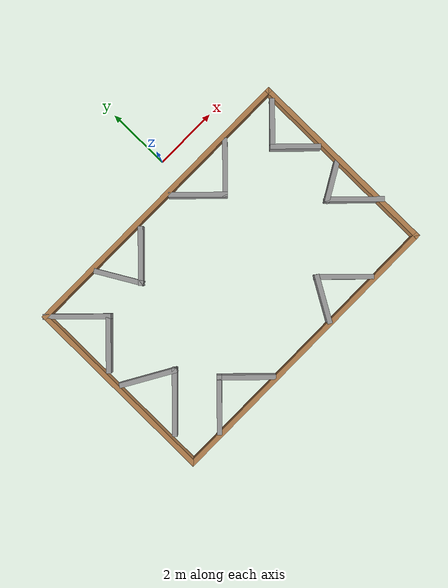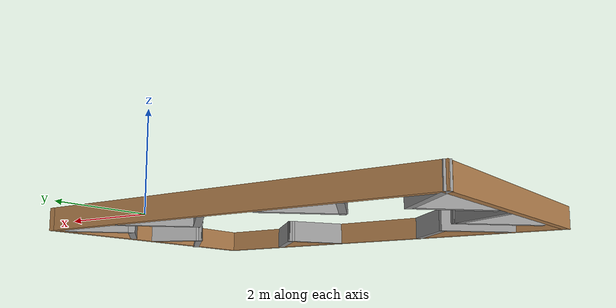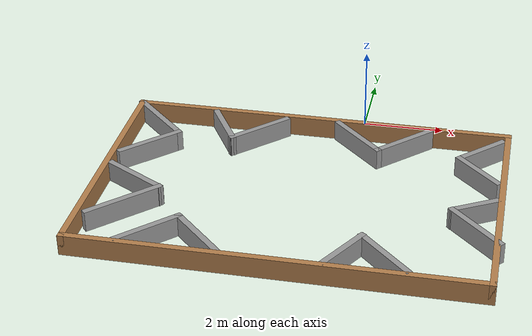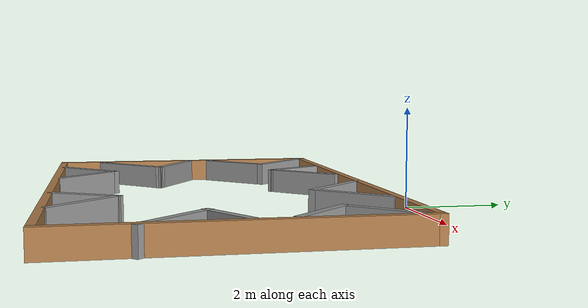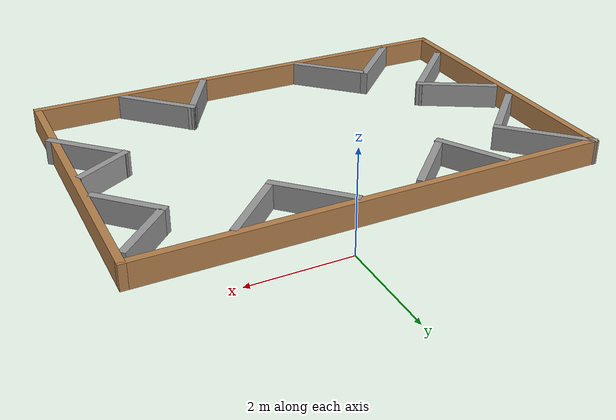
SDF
<?xml version='1.0'?>
<sdf version='1.7'>
  <model name='Maze_5'>
    <pose>-0.965569 -3.4925 0 0 -0 0</pose>
    <link name='Wall_0'>
      <collision name='Wall_0_Collision'>
        <geometry>
          <box>
            <size>6.25 0.15 0.5</size>
          </box>
        </geometry>
        <pose>0 0 0.25 0 -0 0</pose>
      </collision>
      <visual name='Wall_0_Visual'>
        <pose>0 0 0.25 0 -0 0</pose>
        <geometry>
          <box>
            <size>6.25 0.15 0.5</size>
          </box>
        </geometry>
        <material>
          <script>
            <uri>file://media/materials/scripts/gazebo.material</uri>
            <name>Gazebo/Wood</name>
          </script>
          <ambient>1 1 1 1</ambient>
        </material>
        <meta>
          <layer>0</layer>
        </meta>
      </visual>
      <pose>-4.70443 -0.3675 0 0 -0 -1.5708</pose>
    </link>
    <link name='Wall_1'>
      <collision name='Wall_1_Collision'>
        <geometry>
          <box>
            <size>9.5 0.15 0.5</size>
          </box>
        </geometry>
        <pose>0 0 0.25 0 -0 0</pose>
      </collision>
      <visual name='Wall_1_Visual'>
        <pose>0 0 0.25 0 -0 0</pose>
        <geometry>
          <box>
            <size>9.5 0.15 0.5</size>
          </box>
        </geometry>
        <material>
          <script>
            <uri>file://media/materials/scripts/gazebo.material</uri>
            <name>Gazebo/Wood</name>
          </script>
          <ambient>1 1 1 1</ambient>
        </material>
        <meta>
          <layer>0</layer>
        </meta>
      </visual>
      <pose>-0.029431 -3.4175 0 0 -0 0</pose>
    </link>
    <link name='Wall_11'>
      <collision name='Wall_11_Collision'>
        <geometry>
          <box>
            <size>1.75 0.15 0.5</size>
          </box>
        </geometry>
        <pose>0 0 0.25 0 -0 0</pose>
      </collision>
      <visual name='Wall_11_Visual'>
        <pose>0 0 0.25 0 -0 0</pose>
        <geometry>
          <box>
            <size>1.75 0.15 0.5</size>
          </box>
        </geometry>
        <material>
          <script>
            <uri>file://media/materials/scripts/gazebo.material</uri>
            <name>Gazebo/Grey</name>
          </script>
          <ambient>1 1 1 1</ambient>
        </material>
        <meta>
          <layer>0</layer>
        </meta>
      </visual>
      <pose>-2.95893 -2.772 0 0 -0 0.785398</pose>
    </link>
    <link name='Wall_14'>
      <collision name='Wall_14_Collision'>
        <geometry>
          <box>
            <size>1.75 0.15 0.5</size>
          </box>
        </geometry>
        <pose>0 0 0.25 0 -0 0</pose>
      </collision>
      <visual name='Wall_14_Visual'>
        <pose>0 0 0.25 0 -0 0</pose>
        <geometry>
          <box>
            <size>1.75 0.15 0.5</size>
          </box>
        </geometry>
        <material>
          <script>
            <uri>file://media/materials/scripts/gazebo.material</uri>
            <name>Gazebo/Grey</name>
          </script>
          <ambient>1 1 1 1</ambient>
        </material>
        <meta>
          <layer>0</layer>
        </meta>
      </visual>
      <pose>-1.82743 -2.772 0 0 -0 -0.784956</pose>
    </link>
    <link name='Wall_16'>
      <collision name='Wall_16_Collision'>
        <geometry>
          <box>
            <size>1.5 0.15 0.5</size>
          </box>
        </geometry>
        <pose>0 0 0.25 0 -0 0</pose>
      </collision>
      <visual name='Wall_16_Visual'>
        <pose>0 0 0.25 0 -0 0</pose>
        <geometry>
          <box>
            <size>1.5 0.15 0.5</size>
          </box>
        </geometry>
        <material>
          <script>
            <uri>file://media/materials/scripts/gazebo.material</uri>
            <name>Gazebo/Grey</name>
          </script>
          <ambient>1 1 1 1</ambient>
        </material>
        <meta>
          <layer>0</layer>
        </meta>
      </visual>
      <pose>1.39307 -2.773 0 0 -0 1.04715</pose>
    </link>
    <link name='Wall_17'>
      <collision name='Wall_17_Collision'>
        <geometry>
          <box>
            <size>1.75 0.15 0.5</size>
          </box>
        </geometry>
        <pose>0 0 0.25 0 -0 0</pose>
      </collision>
      <visual name='Wall_17_Visual'>
        <pose>0 0 0.25 0 -0 0</pose>
        <geometry>
          <box>
            <size>1.75 0.15 0.5</size>
          </box>
        </geometry>
        <material>
          <script>
            <uri>file://media/materials/scripts/gazebo.material</uri>
            <name>Gazebo/Grey</name>
          </script>
          <ambient>1 1 1 1</ambient>
        </material>
        <meta>
          <layer>0</layer>
        </meta>
      </visual>
      <pose>2.29607 -2.754 0 0 -0 -0.785398</pose>
    </link>
    <link name='Wall_2'>
      <collision name='Wall_2_Collision'>
        <geometry>
          <box>
            <size>6.25 0.15 0.5</size>
          </box>
        </geometry>
        <pose>0 0 0.25 0 -0 0</pose>
      </collision>
      <visual name='Wall_2_Visual'>
        <pose>0 0 0.25 0 -0 0</pose>
        <geometry>
          <box>
            <size>6.25 0.15 0.5</size>
          </box>
        </geometry>
        <material>
          <script>
            <uri>file://media/materials/scripts/gazebo.material</uri>
            <name>Gazebo/Wood</name>
          </script>
          <ambient>1 1 1 1</ambient>
        </material>
        <meta>
          <layer>0</layer>
        </meta>
      </visual>
      <pose>4.64557 -0.3675 0 0 -0 1.5708</pose>
    </link>
    <link name='Wall_20'>
      <collision name='Wall_20_Collision'>
        <geometry>
          <box>
            <size>1.5 0.15 0.5</size>
          </box>
        </geometry>
        <pose>0 0 0.25 0 -0 0</pose>
      </collision>
      <visual name='Wall_20_Visual'>
        <pose>0 0 0.25 0 -0 0</pose>
        <geometry>
          <box>
            <size>1.5 0.15 0.5</size>
          </box>
        </geometry>
        <material>
          <script>
            <uri>file://media/materials/scripts/gazebo.material</uri>
            <name>Gazebo/Grey</name>
          </script>
          <ambient>1 1 1 1</ambient>
        </material>
        <meta>
          <layer>0</layer>
        </meta>
      </visual>
      <pose>4.02807 1.915 0 0 -0 -2.35619</pose>
    </link>
    <link name='Wall_22'>
      <collision name='Wall_22_Collision'>
        <geometry>
          <box>
            <size>1.5 0.15 0.5</size>
          </box>
        </geometry>
        <pose>0 0 0.25 0 -0 0</pose>
      </collision>
      <visual name='Wall_22_Visual'>
        <pose>0 0 0.25 0 -0 0</pose>
        <geometry>
          <box>
            <size>1.5 0.15 0.5</size>
          </box>
        </geometry>
        <material>
          <script>
            <uri>file://media/materials/scripts/gazebo.material</uri>
            <name>Gazebo/Grey</name>
          </script>
          <ambient>1 1 1 1</ambient>
        </material>
        <meta>
          <layer>0</layer>
        </meta>
      </visual>
      <pose>4.02807 0.9605 0 0 -0 -0.784874</pose>
    </link>
    <link name='Wall_24'>
      <collision name='Wall_24_Collision'>
        <geometry>
          <box>
            <size>1.25 0.15 0.5</size>
          </box>
        </geometry>
        <pose>0 0 0.25 0 -0 0</pose>
      </collision>
      <visual name='Wall_24_Visual'>
        <pose>0 0 0.25 0 -0 0</pose>
        <geometry>
          <box>
            <size>1.25 0.15 0.5</size>
          </box>
        </geometry>
        <material>
          <script>
            <uri>file://media/materials/scripts/gazebo.material</uri>
            <name>Gazebo/Grey</name>
          </script>
          <ambient>1 1 1 1</ambient>
        </material>
        <meta>
          <layer>0</layer>
        </meta>
      </visual>
      <pose>4.04907 -0.5325 0 0 -0 -2.61816</pose>
    </link>
    <link name='Wall_25'>
      <collision name='Wall_25_Collision'>
        <geometry>
          <box>
            <size>1.75 0.15 0.5</size>
          </box>
        </geometry>
        <pose>0 0 0.25 0 -0 0</pose>
      </collision>
      <visual name='Wall_25_Visual'>
        <pose>0 0 0.25 0 -0 0</pose>
        <geometry>
          <box>
            <size>1.75 0.15 0.5</size>
          </box>
        </geometry>
        <material>
          <script>
            <uri>file://media/materials/scripts/gazebo.material</uri>
            <name>Gazebo/Grey</name>
          </script>
          <ambient>1 1 1 1</ambient>
        </material>
        <meta>
          <layer>0</layer>
        </meta>
      </visual>
      <pose>4.13857 -1.373 0 0 -0 -0.784956</pose>
    </link>
    <link name='Wall_27'>
      <collision name='Wall_27_Collision'>
        <geometry>
          <box>
            <size>1.5 0.15 0.5</size>
          </box>
        </geometry>
        <pose>0 0 0.25 0 -0 0</pose>
      </collision>
      <visual name='Wall_27_Visual'>
        <pose>0 0 0.25 0 -0 0</pose>
        <geometry>
          <box>
            <size>1.5 0.15 0.5</size>
          </box>
        </geometry>
        <material>
          <script>
            <uri>file://media/materials/scripts/gazebo.material</uri>
            <name>Gazebo/Grey</name>
          </script>
          <ambient>1 1 1 1</ambient>
        </material>
        <meta>
          <layer>0</layer>
        </meta>
      </visual>
      <pose>-2.36693 1.968 0 0 -0 -1.04715</pose>
    </link>
    <link name='Wall_28'>
      <collision name='Wall_28_Collision'>
        <geometry>
          <box>
            <size>1.75 0.15 0.5</size>
          </box>
        </geometry>
        <pose>0 0 0.25 0 -0 0</pose>
      </collision>
      <visual name='Wall_28_Visual'>
        <pose>0 0 0.25 0 -0 0</pose>
        <geometry>
          <box>
            <size>1.75 0.15 0.5</size>
          </box>
        </geometry>
        <material>
          <script>
            <uri>file://media/materials/scripts/gazebo.material</uri>
            <name>Gazebo/Grey</name>
          </script>
          <ambient>1 1 1 1</ambient>
        </material>
        <meta>
          <layer>0</layer>
        </meta>
      </visual>
      <pose>-1.46393 1.949 0 0 -0 0.785398</pose>
    </link>
    <link name='Wall_3'>
      <collision name='Wall_3_Collision'>
        <geometry>
          <box>
            <size>9.5 0.15 0.5</size>
          </box>
        </geometry>
        <pose>0 0 0.25 0 -0 0</pose>
      </collision>
      <visual name='Wall_3_Visual'>
        <pose>0 0 0.25 0 -0 0</pose>
        <geometry>
          <box>
            <size>9.5 0.15 0.5</size>
          </box>
        </geometry>
        <material>
          <script>
            <uri>file://media/materials/scripts/gazebo.material</uri>
            <name>Gazebo/Wood</name>
          </script>
          <ambient>1 1 1 1</ambient>
        </material>
        <meta>
          <layer>0</layer>
        </meta>
      </visual>
      <pose>-0.029431 2.6825 0 0 -0 3.14159</pose>
    </link>
    <link name='Wall_30'>
      <collision name='Wall_30_Collision'>
        <geometry>
          <box>
            <size>1.75 0.15 0.5</size>
          </box>
        </geometry>
        <pose>0 0 0.25 0 -0 0</pose>
      </collision>
      <visual name='Wall_30_Visual'>
        <pose>0 0 0.25 0 -0 0</pose>
        <geometry>
          <box>
            <size>1.75 0.15 0.5</size>
          </box>
        </geometry>
        <material>
          <script>
            <uri>file://media/materials/scripts/gazebo.material</uri>
            <name>Gazebo/Grey</name>
          </script>
          <ambient>1 1 1 1</ambient>
        </material>
        <meta>
          <layer>0</layer>
        </meta>
      </visual>
      <pose>1.00107 2.007 0 0 -0 -0.785398</pose>
    </link>
    <link name='Wall_33'>
      <collision name='Wall_33_Collision'>
        <geometry>
          <box>
            <size>1.75 0.15 0.5</size>
          </box>
        </geometry>
        <pose>0 0 0.25 0 -0 0</pose>
      </collision>
      <visual name='Wall_33_Visual'>
        <pose>0 0 0.25 0 -0 0</pose>
        <geometry>
          <box>
            <size>1.75 0.15 0.5</size>
          </box>
        </geometry>
        <material>
          <script>
            <uri>file://media/materials/scripts/gazebo.material</uri>
            <name>Gazebo/Grey</name>
          </script>
          <ambient>1 1 1 1</ambient>
        </material>
        <meta>
          <layer>0</layer>
        </meta>
      </visual>
      <pose>2.13257 2.007 0 0 -0 0.784956</pose>
    </link>
    <link name='Wall_5'>
      <collision name='Wall_5_Collision'>
        <geometry>
          <box>
            <size>2 0.15 0.5</size>
          </box>
        </geometry>
        <pose>0 0 0.25 0 -0 0</pose>
      </collision>
      <visual name='Wall_5_Visual'>
        <pose>0 0 0.25 0 -0 0</pose>
        <geometry>
          <box>
            <size>2 0.15 0.5</size>
          </box>
        </geometry>
        <material>
          <script>
            <uri>file://media/materials/scripts/gazebo.material</uri>
            <name>Gazebo/Grey</name>
          </script>
          <ambient>1 1 1 1</ambient>
        </material>
        <meta>
          <layer>0</layer>
        </meta>
      </visual>
      <pose>-4.05043 2.0285 0 0 -0 -0.785398</pose>
    </link>
    <link name='Wall_6'>
      <collision name='Wall_6_Collision'>
        <geometry>
          <box>
            <size>1.75 0.15 0.5</size>
          </box>
        </geometry>
        <pose>0 0 0.25 0 -0 0</pose>
      </collision>
      <visual name='Wall_6_Visual'>
        <pose>0 0 0.25 0 -0 0</pose>
        <geometry>
          <box>
            <size>1.75 0.15 0.5</size>
          </box>
        </geometry>
        <material>
          <script>
            <uri>file://media/materials/scripts/gazebo.material</uri>
            <name>Gazebo/Grey</name>
          </script>
          <ambient>1 1 1 1</ambient>
        </material>
        <meta>
          <layer>0</layer>
        </meta>
      </visual>
      <pose>-3.96193 0.8085 0 0 -0 -2.35575</pose>
    </link>
    <link name='Wall_8'>
      <collision name='Wall_8_Collision'>
        <geometry>
          <box>
            <size>1.75 0.15 0.5</size>
          </box>
        </geometry>
        <pose>0 0 0.25 0 -0 0</pose>
      </collision>
      <visual name='Wall_8_Visual'>
        <pose>0 0 0.25 0 -0 0</pose>
        <geometry>
          <box>
            <size>1.75 0.15 0.5</size>
          </box>
        </geometry>
        <material>
          <script>
            <uri>file://media/materials/scripts/gazebo.material</uri>
            <name>Gazebo/Grey</name>
          </script>
          <ambient>1 1 1 1</ambient>
        </material>
        <meta>
          <layer>0</layer>
        </meta>
      </visual>
      <pose>-3.86143 -0.727499 0 0 -0 -0.523487</pose>
    </link>
    <link name='Wall_9'>
      <collision name='Wall_9_Collision'>
        <geometry>
          <box>
            <size>2 0.15 0.5</size>
          </box>
        </geometry>
        <pose>0 0 0.25 0 -0 0</pose>
      </collision>
      <visual name='Wall_9_Visual'>
        <pose>0 0 0.25 0 -0 0</pose>
        <geometry>
          <box>
            <size>2 0.15 0.5</size>
          </box>
        </geometry>
        <material>
          <script>
            <uri>file://media/materials/scripts/gazebo.material</uri>
            <name>Gazebo/Grey</name>
          </script>
          <ambient>1 1 1 1</ambient>
        </material>
        <meta>
          <layer>0</layer>
        </meta>
      </visual>
      <pose>-3.82293 -1.7815 0 0 -0 -2.35658</pose>
    </link>
    <static>1</static>
  </model>
</sdf>
